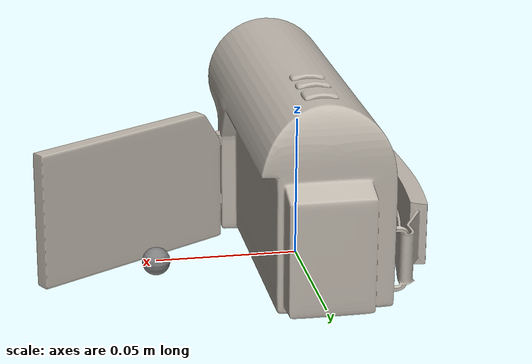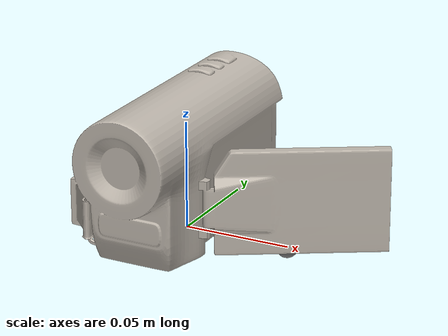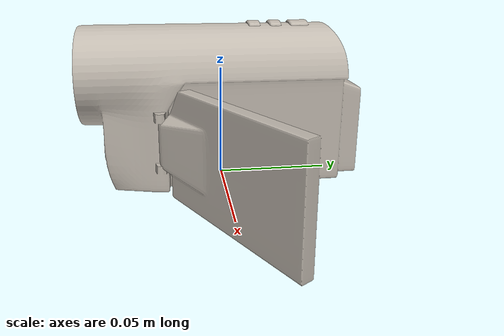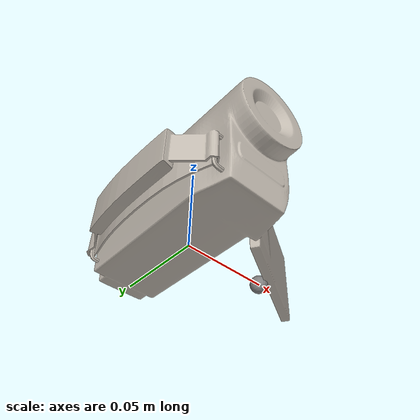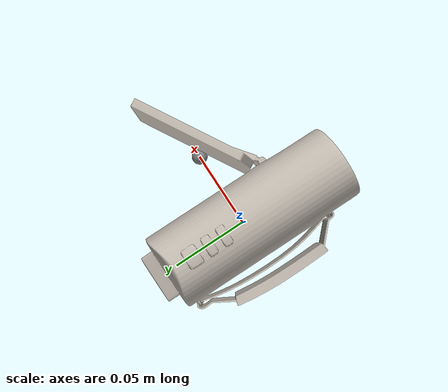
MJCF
<mujoco>
  <!-- Video camera with realistic mesh -->
  <asset>
    <mesh name="video_camera_mesh" file="../meshes/10128_Video_camera_v1_L3.obj" scale="0.01 0.01 0.01"/>
    <texture name="video_camera_tex" file="../textures/10128_video_camera_v1_Diffuse.jpg" type="2d"/>
    <material name="video_camera_mat" texture="video_camera_tex"/>
  </asset>

  <worldbody>
    <body name="video_camera_body">
      <geom name="camera_mesh" type="mesh" mesh="video_camera_mesh" material="video_camera_mat"/>

      <!-- Camera site for sensor -->
      <site name="camera_lens" pos="0.05 0 0"/>

      <!-- The actual MuJoCo camera looking through the lens -->
      <camera name="video_cam" pos="0.05 0 0" fovy="60"/>
    </body>
  </worldbody>
</mujoco>
